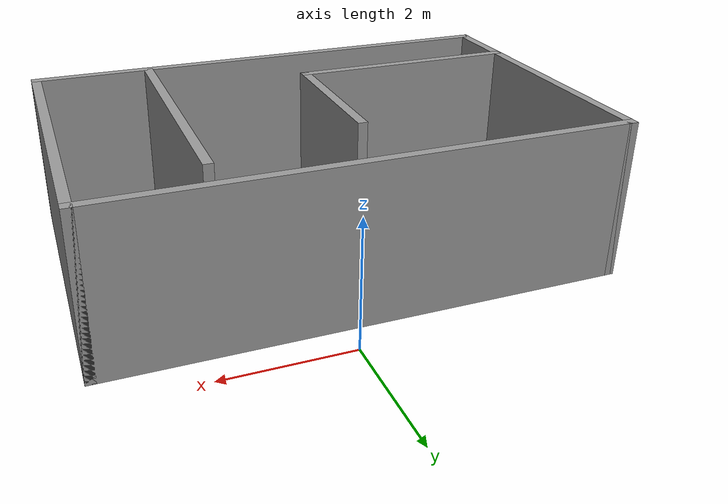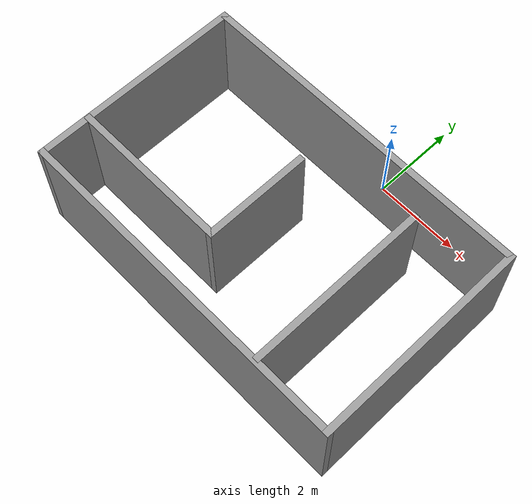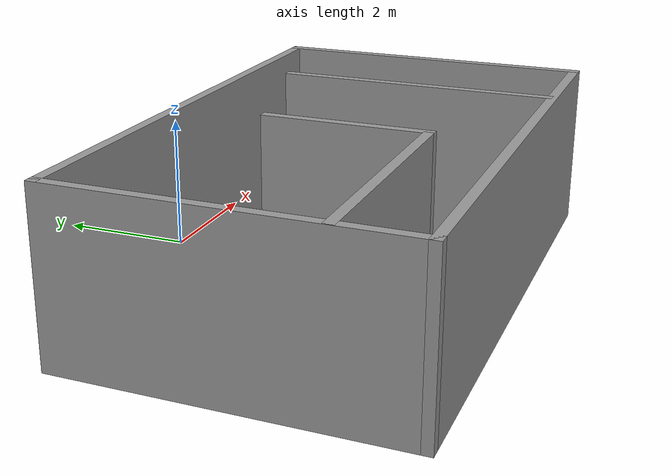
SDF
<?xml version='1.0'?>
<sdf version='1.7'>
  <model name='room'>
    <pose>-0.445 -2.7375 0 0 -0 0</pose>
    <link name='Wall_0'>
      <collision name='Wall_0_Collision'>
        <geometry>
          <box>
            <size>8 0.15 2.5</size>
          </box>
        </geometry>
        <pose>0 0 1.25 0 -0 0</pose>
      </collision>
      <visual name='Wall_0_Visual'>
        <pose>0 0 1.25 0 -0 0</pose>
        <geometry>
          <box>
            <size>8 0.15 2.5</size>
          </box>
        </geometry>
        <material>
          <script>
            <uri>file://media/materials/scripts/gazebo.material</uri>
            <name>Gazebo/Grey</name>
          </script>
          <ambient>1 1 1 1</ambient>
        </material>
        <meta>
          <layer>0</layer>
        </meta>
      </visual>
      <pose>-0 2.1875 0 0 -0 0</pose>
    </link>
    <link name='Wall_10'>
      <collision name='Wall_10_Collision'>
        <geometry>
          <box>
            <size>4.25 0.15 2.5</size>
          </box>
        </geometry>
        <pose>0 0 1.25 0 -0 0</pose>
      </collision>
      <visual name='Wall_10_Visual'>
        <pose>0 0 1.25 0 -0 0</pose>
        <geometry>
          <box>
            <size>4.25 0.15 2.5</size>
          </box>
        </geometry>
        <material>
          <script>
            <uri>file://media/materials/scripts/gazebo.material</uri>
            <name>Gazebo/Grey</name>
          </script>
          <ambient>1 1 1 1</ambient>
        </material>
        <meta>
          <layer>0</layer>
        </meta>
      </visual>
      <pose>2.10705 -0.536375 0 0 -0 1.5708</pose>
    </link>
    <link name='Wall_2'>
      <collision name='Wall_2_Collision'>
        <geometry>
          <box>
            <size>5 0.15 2.5</size>
          </box>
        </geometry>
        <pose>0 0 1.25 0 -0 0</pose>
      </collision>
      <visual name='Wall_2_Visual'>
        <pose>0 0 1.25 0 -0 0</pose>
        <geometry>
          <box>
            <size>5 0.15 2.5</size>
          </box>
        </geometry>
        <material>
          <script>
            <uri>file://media/materials/scripts/gazebo.material</uri>
            <name>Gazebo/Grey</name>
          </script>
          <ambient>1 1 1 1</ambient>
        </material>
        <meta>
          <layer>0</layer>
        </meta>
      </visual>
      <pose>3.925 -0.2375 0 0 -0 -1.5708</pose>
    </link>
    <link name='Wall_3'>
      <collision name='Wall_3_Collision'>
        <geometry>
          <box>
            <size>8 0.15 2.5</size>
          </box>
        </geometry>
        <pose>0 0 1.25 0 -0 0</pose>
      </collision>
      <visual name='Wall_3_Visual'>
        <pose>0 0 1.25 0 -0 0</pose>
        <geometry>
          <box>
            <size>8 0.15 2.5</size>
          </box>
        </geometry>
        <material>
          <script>
            <uri>file://media/materials/scripts/gazebo.material</uri>
            <name>Gazebo/Grey</name>
          </script>
          <ambient>1 1 1 1</ambient>
        </material>
        <meta>
          <layer>0</layer>
        </meta>
      </visual>
      <pose>-0 -2.6625 0 0 -0 3.14159</pose>
    </link>
    <link name='Wall_4'>
      <collision name='Wall_4_Collision'>
        <geometry>
          <box>
            <size>5 0.15 2.5</size>
          </box>
        </geometry>
        <pose>0 0 1.25 0 -0 0</pose>
      </collision>
      <visual name='Wall_4_Visual'>
        <pose>0 0 1.25 0 -0 0</pose>
        <geometry>
          <box>
            <size>5 0.15 2.5</size>
          </box>
        </geometry>
        <material>
          <script>
            <uri>file://media/materials/scripts/gazebo.material</uri>
            <name>Gazebo/Grey</name>
          </script>
          <ambient>1 1 1 1</ambient>
        </material>
        <meta>
          <layer>0</layer>
        </meta>
      </visual>
      <pose>-3.925 -0.2375 0 0 -0 1.5708</pose>
    </link>
    <link name='Wall_6'>
      <collision name='Wall_6_Collision'>
        <geometry>
          <box>
            <size>3.75 0.15 2.5</size>
          </box>
        </geometry>
        <pose>0 0 1.25 0 -0 0</pose>
      </collision>
      <visual name='Wall_6_Visual'>
        <pose>0 0 1.25 0 -0 0</pose>
        <geometry>
          <box>
            <size>3.75 0.15 2.5</size>
          </box>
        </geometry>
        <material>
          <script>
            <uri>file://media/materials/scripts/gazebo.material</uri>
            <name>Gazebo/Grey</name>
          </script>
          <ambient>1 1 1 1</ambient>
        </material>
        <meta>
          <layer>0</layer>
        </meta>
      </visual>
      <pose>-2.11033 -1.50192 0 0 -0 0</pose>
    </link>
    <link name='Wall_7'>
      <collision name='Wall_7_Collision'>
        <geometry>
          <box>
            <size>2.5 0.15 2.5</size>
          </box>
        </geometry>
        <pose>0 0 1.25 0 -0 0</pose>
      </collision>
      <visual name='Wall_7_Visual'>
        <pose>0 0 1.25 0 -0 0</pose>
        <geometry>
          <box>
            <size>2.5 0.15 2.5</size>
          </box>
        </geometry>
        <material>
          <script>
            <uri>file://media/materials/scripts/gazebo.material</uri>
            <name>Gazebo/Grey</name>
          </script>
          <ambient>1 1 1 1</ambient>
        </material>
        <meta>
          <layer>0</layer>
        </meta>
      </visual>
      <pose>-0.310325 -0.326925 0 0 -0 1.5708</pose>
    </link>
    <static>1</static>
  </model>
</sdf>
